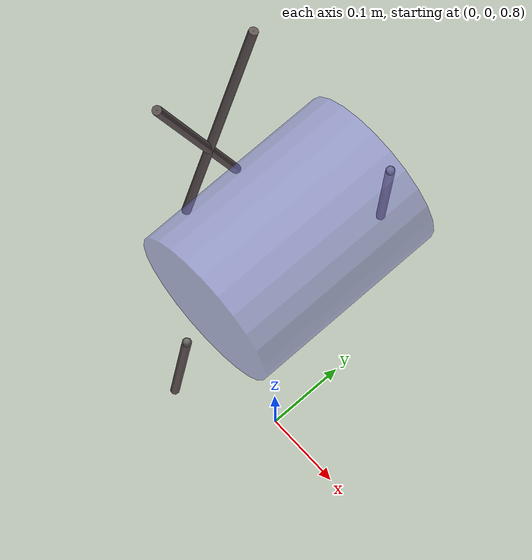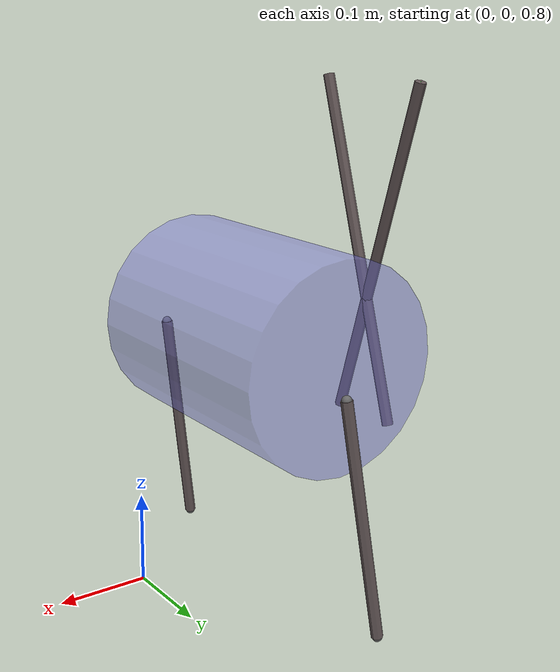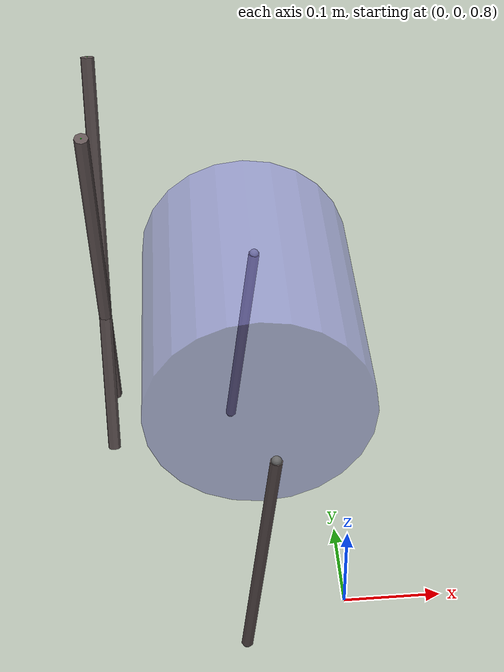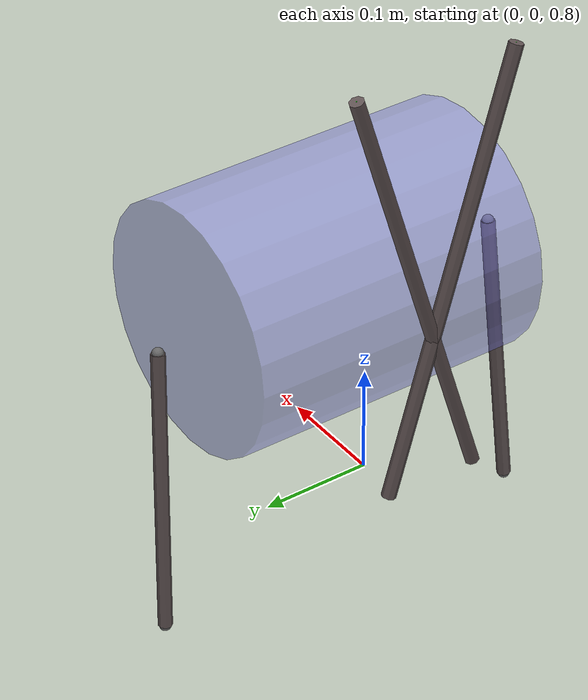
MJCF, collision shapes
<mujoco model="AuxivoLiftsuit">
  <compiler angle="radian"/>
  <default class="main">
    <default class="myotorsoexo">
      <geom margin="0.001" rgba="0.35 0.3 0.3 1" conaffinity="0" contype="0"/>
      <site size="0.001 0.005 0.005"/>
      <tendon limited="false" width="0.006" group="1" rgba="0.38 0.33 0.33 1"/>
    </default>
    <!-- Restored locally: dropped from the current myo_sim myotorso_assets.xml, but the
         exosuit's spring-tendon wrap cylinder + side site still need them. -->
    <default class="myoBack_wrap">
      <geom rgba=".5 .5 .9 0.5" group="3" contype="0" conaffinity="0" type="cylinder"/>
    </default>
    <default class="sidesite">
      <site group="3" size="0.0005"/>
    </default>
  </default>

  <asset>
    <mesh name="lower_exo_belt_geom_1" file="__EXO__/lower_exo_belt.stl" scale="0.0015 0.0015 0.0013"/>
    <mesh name="lower_exo_legs_geom_1" file="__EXO__/lower_exo_legs.stl" scale="0.0013 0.0013 0.0013"/>
    <mesh name="upper_exo_geom_1" file="__EXO__/upper_exo.stl" scale="0.001 0.0011 0.001"/>
  </asset>

  <worldbody>
    <body name="exo_pelvis" pos="-.025 0.1 0.979" quat="0.707035 0.707179 0 0" childclass="myotorsoexo">
      <geom name="lower_exo_legs_geom" type="mesh" euler="1.57 3.14 -1.57" pos="-0.08 0.1 0" mesh="lower_exo_legs_geom_1"/>
      <site name="Lower_Exo_Left_Leg" pos="-0.08 -0.15 -0.17" size="0.005" rgba="0.4 0.4 0.4 1"/>
      <site name="Lower_Exo_Right_Leg" pos="-0.08 -0.15 0.17" size="0.005" rgba="0.4 0.4 0.4 1"/>
      <site name="Exo_LeftLeg" pos="-0.2 0 -0.04" size="0.0005" rgba="0 1 0 1"/>
      <site name="Exo_RightLeg" pos="-0.2 0 0.04" size="0.0005" rgba="0 1 0 1"/>
    </body>

    <body name="exo_lumbar4" pos="-0.0951 0.091 1.05" quat="0.707035 0.707179 0 0" childclass="myotorsoexo">
      <freejoint/>
      <site name="Lower_Exo_Left_Belt" pos="0.02 0.02 -0.158" size="0.005" rgba="0.4 0.4 0.4 1"/>
      <site name="Lower_Exo_Right_Belt" pos="0.02 0.02 0.158" size="0.005" rgba="0.4 0.4 0.4 1"/>
      <geom name="lower_exo_belt_geom" type="mesh" euler="1.57 3.14 -1.57" pos="0.03 0.03 0" mesh="lower_exo_belt_geom_1" mass="0.094"/>
    </body>

    <body name="exo_torso" pos="-0.111 0.0995 1.06" quat="0.707035 0.707179 0 0" childclass="myotorsoexo">
      <freejoint/>
      <geom name="upper_exo_geom" type="mesh" euler="1.57 3.14 1.57" pos="0.01 0.165 0" mesh="upper_exo_geom_1"/>
      <geom name="Exo_cylinder" size="0.105 0.13" pos="0.025 0.03 0" class="myoBack_wrap"/>
      <site name="Exo_LeftShoulder" pos="-0.11 0.28 -0.07" size="0.0005" rgba="0 1 0 1"/>
      <site name="Exo_RightShoulder" pos="-0.11 0.28 0.07" size="0.0005" rgba="0 1 0 1"/>
      <site name="Exo_sidesite" pos="-0.14 0.05 0" class="sidesite"/>
    </body>
  </worldbody>

  <tendon>
    <spatial name="Exo_LS_RL" stiffness="515.5998876" springlength="0 0.37" class="myotorsoexo">
      <site site="Exo_RightShoulder"/>
      <geom geom="Exo_cylinder" sidesite="Exo_sidesite"/>
      <site site="Exo_LeftLeg"/>
    </spatial>
    <spatial name="Exo_RS_LL" stiffness="515.5998876" springlength="0 0.37" class="myotorsoexo">
      <site site="Exo_LeftShoulder"/>
      <geom geom="Exo_cylinder" sidesite="Exo_sidesite"/>
      <site site="Exo_RightLeg"/>
    </spatial>
    <spatial name="Lower_Exo_Left" stiffness="0" class="myotorsoexo">
      <site site="Lower_Exo_Left_Belt"/>
      <site site="Lower_Exo_Left_Leg"/>
    </spatial>
    <spatial name="Lower_Exo_Right" stiffness="0" class="myotorsoexo">
      <site site="Lower_Exo_Right_Belt"/>
      <site site="Lower_Exo_Right_Leg"/>
    </spatial>
  </tendon>
</mujoco>
